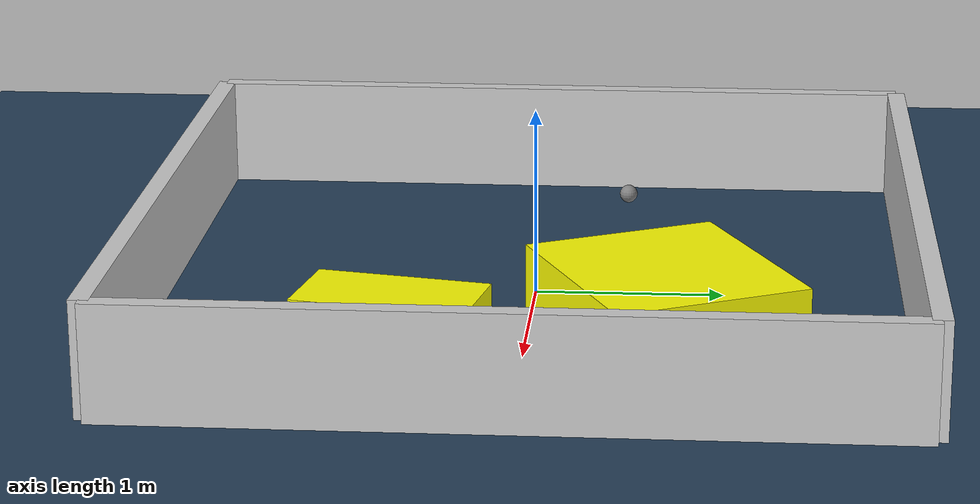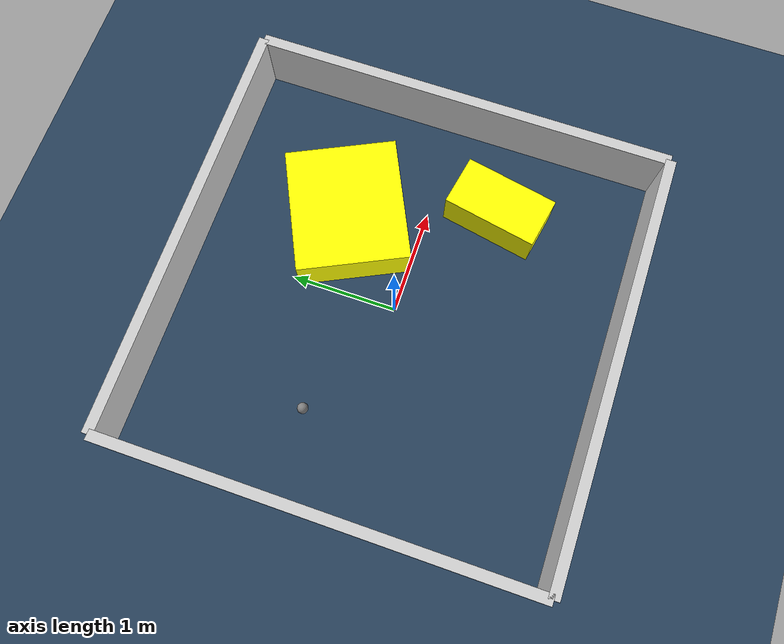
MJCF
<?xml version="1.0" ?>
<mujoco model="generated_environment">
  <option timestep="0.01" integrator="RK4" cone="elliptic"/>
  <default>
    <geom density="1"/>
  </default>
  <asset>
    <texture builtin="gradient" height="3072" rgb1="0.3 0.5 0.7" rgb2="0 0 0" type="skybox" width="512"/>
    <texture builtin="checker" height="300" mark="edge" markrgb="0.8 0.8 0.8" name="groundplane" rgb1="0.2 0.3 0.4" rgb2="0.1 0.2 0.3" type="2d" width="300"/>
    <material name="groundplane" reflectance="0.2" texrepeat="5 5" texture="groundplane" texuniform="true"/>
    <material name="robot" rgba="0.0 1.0 0.0 1"/>
  </asset>
  <worldbody>
    <light dir="0 0 -1" directional="true" pos="0 0 1.5"/>
    <geom condim="4" friction="1.0 0.005 0.001" material="groundplane" name="floor" size="0 0 0.05" type="plane"/>
    <body name="walls">
      <geom name="wall_1" condim="4" pos="-2.0 0.0 0.3" rgba="0.800000011920929 0.800000011920929 0.800000011920929 1.0" size="0.05 2.0 0.3" type="box"/>
      <geom name="wall_2" condim="4" pos="2.0 0.0 0.3" rgba="0.800000011920929 0.800000011920929 0.800000011920929 1.0" size="0.05 2.0 0.3" type="box"/>
      <geom name="wall_3" condim="4" pos="0.0 -2.0 0.3" rgba="0.800000011920929 0.800000011920929 0.800000011920929 1.0" size="2.0 0.05 0.3" type="box"/>
      <geom name="wall_4" condim="4" pos="0.0 2.0 0.3" rgba="0.800000011920929 0.800000011920929 0.800000011920929 1.0" size="2.0 0.05 0.3" type="box"/>
    </body>
    <body name="robot">
      <joint name="joint_x" type="slide" pos="0 0 0" axis="1 0 0"/>
      <joint name="joint_y" type="slide" pos="0 0 0" axis="0 1 0"/>
      <geom name="robot" type="sphere" pos="-1.1696482880362373 0.45136780624407935 0.2" size="0.05" mass="5." friction="1.0 0.005 0.0001" condim="4"/>
      <site name="sensor_ball"/>
    </body>
    <body name="obstacle_1_movable">
      <geom name="obstacle_1_movable" condim="4" pos="0.7159849819335058 0.7059642981010354 0.2" euler="0 0 25.818080708017742" friction="1.0 0.005 0.001" rgba="1 1 0 1" size="0.5901949850601244 0.52660532238246 0.2" type="box" mass="0.1"/>
      <joint type="free"/>
    </body>
    <body name="obstacle_2_movable">
      <geom name="obstacle_2_movable" condim="4" pos="1.2024022621999046 -0.6350088597943357 0.2" euler="0 0 79.1799999319214" friction="1.0 0.005 0.001" rgba="1 1 0 1" size="0.44951388410259974 0.24193023862210114 0.2" type="box" mass="0.1"/>
      <joint type="free"/>
    </body>
  </worldbody>
  <actuator>
    <motor name="actuator_x" joint="joint_x" gear="1" ctrlrange="-1 1"/>
    <motor name="actuator_y" joint="joint_y" gear="1" ctrlrange="-1 1"/>
  </actuator>
</mujoco>
